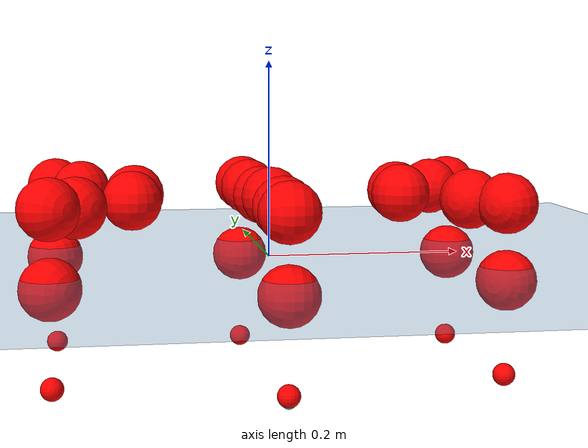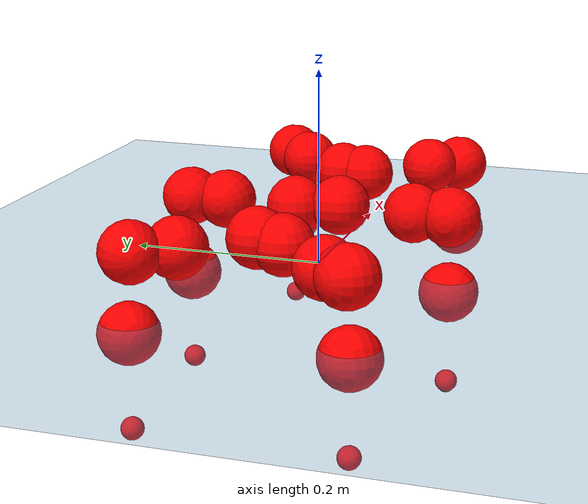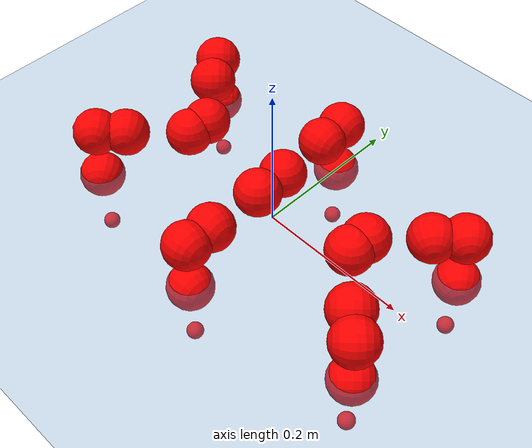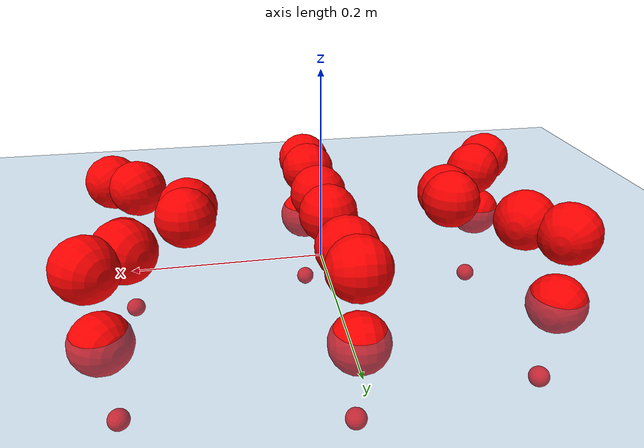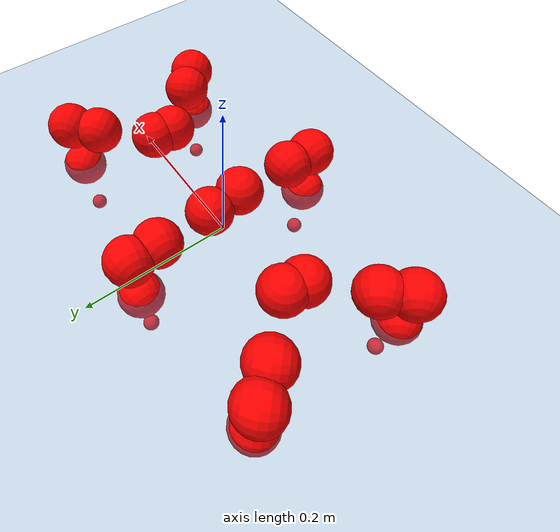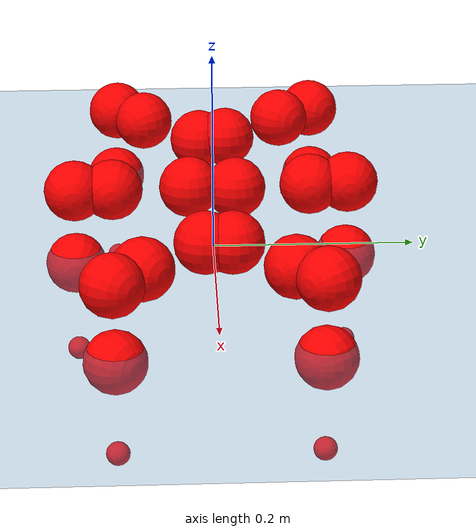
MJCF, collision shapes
<mujoco model="Golem">
  <compiler angle="radian" assetdir="assets" balanceinertia="true" inertiafromgeom="false"/>

  <option timestep="0.005" density="1.2" viscosity="2e-05"/>

  <size nkey="1"/>

  <visual>
    <quality shadowsize="8192"/>
    <map shadowclip="0.5"/>
  </visual>

  <default>
    <default class="/">
      <joint armature="0.01" damping="0.01" frictionloss="0.01"/>
      <geom contype="0" conaffinity="0" group="1" solref="-1000 -80"/>
      <site size="0.01 0.005 0.005" group="5"/>
      <general forcelimited="true" biastype="affine" gainprm="25" biasprm="0 -25 -0.5"/>
      <default class="visual">
        <geom type="mesh" group="2"/>
      </default>
      <default class="collision">
        <geom group="3"/>
      </default>
      <default class="foot">
        <geom size="0.01 0 0" condim="6" group="4" priority="1" solimp="0.015 1 0.01"/>
      </default>
      <default class="reward_collision_sphere">
        <geom group="5" rgba="1 0 0 1"/>
      </default>
    </default>
  </default>

  <asset>
    <texture type="skybox" colorspace="auto" name="//unnamed_texture_0" builtin="gradient" rgb1="0.95 0.95 0.95" rgb2="0.95 0.95 0.95" width="100" height="600"/>
    <texture type="2d" colorspace="auto" name="texplane" builtin="checker" rgb1="0.345 0.575 0.748" rgb2="0.345 0.575 0.748" markrgb="1 1 1" width="512" height="512"/>
    <material name="MatPlane" class="/" texture="texplane" texuniform="true" texrepeat="2 2" specular="0.9"/>
    <mesh name="body" class="/" file="body.stl" scale="0.001 0.001 0.001"/>
    <mesh name="coxa" class="/" file="coxa.stl" scale="0.001 0.001 0.001"/>
    <mesh name="femur" class="/" file="femur.stl" scale="0.001 0.001 0.001"/>
    <mesh name="tibia" class="/" file="tibia.stl" scale="0.001 0.001 0.001"/>
    <mesh name="tarsus" class="/" file="tarsus.stl" scale="0.001 0.001 0.001"/>
  </asset>

  <worldbody>
    <geom name="floor" class="/" size="100 100 0.125" type="plane" group="0" material="MatPlane"/>
    <light name="toplight_shadow" class="/" pos="0 0 5" dir="0.0990148 0.0990148 -0.990148" type="directional" ambient="0.04 0.04 0.04" diffuse="0.55 0.55 0.55" specular="0.12 0.12 0.12"/>
    <light name="toplight_fill" class="/" pos="0 0 5" dir="0.0990148 0.0990148 -0.990148" type="directional" castshadow="false" ambient="0.04 0.04 0.04" diffuse="0.3 0.3 0.3" specular="0.08 0.08 0.08"/>
    <body name="trunk" pos="-0.000257514 0.000296262 -0.00063775" quat="0.999999 -7.23381e-05 -0.000233467 -0.00113304">
      <inertial pos="0.000435953 -0.00112103 -0.00244793" quat="0.999999 0.000480513 0.000148016 0.000987034" mass="1.60872" diaginertia="0.00528866 6.84575e-05 0.00976929"/>
      <joint name="//unnamed_joint_0" type="free"/>
      <geom name="//unnamed_geom_1" class="/" pos="0 0 0.0638505" quat="1 0 0 0" type="mesh" rgba="0.9 0.9 0.9 1" mesh="body"/>
      <site name="imu" class="/" pos="0.127518 -0.0102298 0.101708" size="0.00750853"/>
      <camera name="track" class="/" pos="0 -0.743561 0" quat="0.707107 0.707107 0 0" mode="trackcom"/>
      <camera name="ego_camera" class="/" pos="0.114805 0 0.0997664" quat="-0.5 -0.5 0.5 0.5"/>
      <body name="coxa_RR" pos="-0.15838 -0.0297028 0.0614487" quat="0.383659 0.000351883 -0.000367544 -0.923474">
        <inertial pos="0.000287291 -0.000294837 0.00308249" quat="0.99993 -0.0074315 -0.000574007 -0.0092224" mass="0.0885106" diaginertia="0.00557656 7.39593e-05 0.0101804"/>
        <joint name="coxa_joint_RR" class="/" pos="0 0 0" axis="0.00330029 -0.000524564 -0.999994" range="-3.19328 3.08499" armature="0.00750051" damping="0.0153537" frictionloss="0.00830002"/>
        <geom name="//unnamed_geom_2" class="/" type="mesh" rgba="0.2 0.2 0.2 1" mesh="coxa"/>
        <geom name="//unnamed_geom_3" class="reward_collision_sphere" size="0.0300341" pos="-0.0264934 0 0"/>
        <body name="femur_RR" pos="0.0540457 0.00144585 0.000480229" quat="0.499515 -0.500174 0.500324 0.499987">
          <inertial pos="0.000595092 -0.000593143 0.000927349" quat="0.999997 -0.00173438 0.000933925 -0.00130207" mass="0.0844284" diaginertia="0.00545317 7.24188e-05 0.00986281"/>
          <joint name="femur_joint_RR" class="/" pos="0 0 0" axis="-0.00699942 -0.00434262 -0.999966" range="-3.08572 3.14177" armature="0.00642188" damping="0" frictionloss="0.00752252"/>
          <geom name="//unnamed_geom_4" class="/" type="mesh" rgba="0.9 0.9 0.9 1" mesh="femur"/>
          <geom name="//unnamed_geom_5" class="reward_collision_sphere" size="0.0300341"/>
          <body name="tibia_RR" pos="-0.00250929 -0.037739 0.00196556" quat="-0.00104627 0.999999 -0.000644913 -0.000347916">
            <inertial pos="0.00284654 0.0022382 -0.000983467" quat="0.999996 0.00170226 0.00199752 0.00103763" mass="0.0875602" diaginertia="0.00536222 7.11792e-05 0.00954121"/>
            <joint name="tibia_joint_RR" class="/" pos="0 0 0" axis="0.00731276 0.0108872 0.999914" range="-3.08696 3.13988" armature="0.0065375" damping="0" frictionloss="0.00791153"/>
            <geom name="//unnamed_geom_6" class="/" type="mesh" rgba="0.2 0.2 0.2 1" mesh="tibia"/>
            <geom name="//unnamed_geom_7" class="reward_collision_sphere" size="0.0300341"/>
            <body name="tarsus_RR" pos="0.0748324 0.00169465 -0.0023319" quat="1 0.000120502 0.000263592 0.000189368">
              <inertial pos="0.051029 0.00135484 -0.00133504" quat="0.499913 0.501702 0.499418 0.498963" mass="0.0879121" diaginertia="0.00559596 7.08333e-05 0.0103951"/>
              <joint name="tarsus_joint_RR" class="/" pos="0 0 0" axis="0.00947715 0.00899564 0.999915" stiffness="0.000749619" range="-3.16641 3.15816" armature="0.00776564" damping="0" frictionloss="0.00713017"/>
              <geom name="//unnamed_geom_8" class="/" type="mesh" rgba="0.9 0.9 0.9 1" mesh="tarsus"/>
              <geom name="foot_1" class="foot" size="0.00745547" pos="0.0989087 0 0" quat="0 -0.707107 0 0.707107"/>
              <geom name="//unnamed_geom_10" class="reward_collision_sphere" size="0.0300341"/>
              <geom name="//unnamed_geom_11" class="reward_collision_sphere" size="0.0112628" pos="0.0949347 0 0"/>
              <site name="foot_1" class="foot" pos="0.0989087 0 0" quat="0 -0.707107 0 0.707107" size="0.00750853"/>
            </body>
          </body>
        </body>
      </body>
      <body name="coxa_RM" pos="-0.000915337 -0.0500522 0.0647004" quat="0.706855 -0.000786691 0.00110265 -0.707357">
        <inertial pos="0.00172988 -0.00258876 0.00173538" quat="0.999996 -0.00174876 -0.00219568 -0.000263437" mass="0.0820709" diaginertia="0.00521732 7.12857e-05 0.00986581"/>
        <joint name="coxa_joint_RM" class="/" pos="0 0 0" axis="0.0128868 0.0055685 -0.999901" range="-3.1332 3.1933" armature="0.00839447" damping="0" frictionloss="0.00654509"/>
        <geom name="//unnamed_geom_12" class="/" type="mesh" rgba="0.2 0.2 0.2 1" mesh="coxa"/>
        <geom name="//unnamed_geom_13" class="reward_collision_sphere" size="0.0300341" pos="-0.0264934 0 0"/>
        <body name="femur_RM" pos="0.0497514 0.000302094 -0.00169132" quat="0.499988 -0.499988 0.499973 0.50005">
          <inertial pos="0.00230152 -0.00077571 -0.000413548" quat="0.999995 0.000585344 0.000936735 -0.00309261" mass="0.088731" diaginertia="0.00537229 7.24452e-05 0.0100719"/>
          <joint name="femur_joint_RM" class="/" pos="0 0 0" axis="0.000904874 0.00202157 -0.999998" range="-3.17125 3.13169" armature="0.00759403" damping="0.0157429" frictionloss="0.00842821"/>
          <geom name="//unnamed_geom_14" class="/" type="mesh" rgba="0.9 0.9 0.9 1" mesh="femur"/>
          <geom name="//unnamed_geom_15" class="reward_collision_sphere" size="0.0300341"/>
          <body name="tibia_RM" pos="0.000748437 -0.0375047 -0.000128958" quat="-0.000400352 1 -0.000312154 -0.000219908">
            <inertial pos="0.000813702 -0.00262361 -0.00278762" quat="0.999905 -0.000149068 0.0122328 0.00640565" mass="0.0852955" diaginertia="0.00558237 7.12306e-05 0.0102786"/>
            <joint name="tibia_joint_RM" class="/" pos="0 0 0" axis="-0.00111031 -0.00175858 0.999998" range="-3.1591 3.11837" armature="0.00843762" damping="0.0101655" frictionloss="0.00842385"/>
            <geom name="//unnamed_geom_16" class="/" type="mesh" rgba="0.2 0.2 0.2 1" mesh="tibia"/>
            <geom name="//unnamed_geom_17" class="reward_collision_sphere" size="0.0300341"/>
            <body name="tarsus_RM" pos="0.0781057 0.000283955 0.000110122" quat="1 2.22254e-06 7.39074e-05 0.000198539">
              <inertial pos="0.0556896 -1.20996e-06 0.0007935" quat="0.5098 0.499992 0.496964 0.493091" mass="0.0835634" diaginertia="0.00546319 7.18196e-05 0.00957688"/>
              <joint name="tarsus_joint_RM" class="/" pos="0 0 0" axis="0.00027728 -0.00065872 1" range="-3.0872 3.16956" armature="0.00843944" damping="0.00576912" frictionloss="0.00748483"/>
              <geom name="//unnamed_geom_18" class="/" type="mesh" rgba="0.9 0.9 0.9 1" mesh="tarsus"/>
              <geom name="foot_2" class="foot" size="0.00829675" pos="0.0989087 0 0" quat="0 -0.707107 0 0.707107"/>
              <geom name="//unnamed_geom_20" class="reward_collision_sphere" size="0.0300341"/>
              <geom name="//unnamed_geom_21" class="reward_collision_sphere" size="0.0112628" pos="0.0949347 0 0"/>
              <site name="foot_2" class="foot" pos="0.0989087 0 0" quat="0 -0.707107 0 0.707107" size="0.00750853"/>
            </body>
          </body>
        </body>
      </body>
      <body name="coxa_RF" pos="0.154947 -0.0297984 0.0647375" quat="0.924008 0.000229393 0.000114583 -0.382374">
        <inertial pos="-0.00240551 -0.0022457 0.00273786" quat="0.999917 -0.0118944 0.00345917 -0.00340073" mass="0.0847093" diaginertia="0.00553533 7.01288e-05 0.00986466"/>
        <joint name="coxa_joint_RF" class="/" pos="0 0 0" axis="0.00157021 -0.00208214 -0.999997" range="-3.15998 3.19224" armature="0.00666239" damping="0.00454713" frictionloss="0.0078902"/>
        <geom name="//unnamed_geom_22" class="/" type="mesh" rgba="0.2 0.2 0.2 1" mesh="coxa"/>
        <geom name="//unnamed_geom_23" class="reward_collision_sphere" size="0.0300341" pos="-0.0264934 0 0"/>
        <body name="femur_RF" pos="0.0544003 -0.00199424 -0.000568695" quat="0.499093 -0.500682 0.49967 0.500554">
          <inertial pos="-5.11358e-05 -0.00283078 0.00277092" quat="0.999915 -0.00867393 -0.00304936 -0.00926972" mass="0.0848006" diaginertia="0.00518966 6.83352e-05 0.00993137"/>
          <joint name="femur_joint_RF" class="/" pos="0 0 0" axis="0.000275549 0.00178045 -0.999998" range="-3.08968 3.13849" armature="0.00725825" damping="0" frictionloss="0.00649274"/>
          <geom name="//unnamed_geom_24" class="/" type="mesh" rgba="0.9 0.9 0.9 1" mesh="femur"/>
          <geom name="//unnamed_geom_25" class="reward_collision_sphere" size="0.0300341"/>
          <body name="tibia_RF" pos="0.00190308 -0.0402853 0.00148097" quat="-0.000680818 0.999999 0.000116686 0.00119096">
            <inertial pos="-8.02121e-05 0.00225311 -0.000700434" quat="0.999925 -0.00342615 -0.0117566 -0.000358375" mass="0.0858412" diaginertia="0.00545452 7.12142e-05 0.010022"/>
            <joint name="tibia_joint_RF" class="/" pos="0 0 0" axis="0.010185 -0.00764984 0.999919" stiffness="9.80124e-05" range="-3.12207 3.12577" armature="0.0073804" damping="0.000659271" frictionloss="0.00754299"/>
            <geom name="//unnamed_geom_26" class="/" type="mesh" rgba="0.2 0.2 0.2 1" mesh="tibia"/>
            <geom name="//unnamed_geom_27" class="reward_collision_sphere" size="0.0300341"/>
            <body name="tarsus_RF" pos="0.0764632 -0.000393158 -0.00141394" quat="0.999999 -5.97114e-05 -0.00112057 -0.000830606">
              <inertial pos="0.0503668 0.000702056 0.00238163" quat="0.505992 0.489599 0.505324 0.498911" mass="0.079866" diaginertia="0.0053683 6.9597e-05 0.00952936"/>
              <joint name="tarsus_joint_RF" class="/" pos="0 0 0" axis="-0.0134773 0.00497427 0.999897" range="-3.0878 3.12734" armature="0.00750975" damping="0.00283272" frictionloss="0.00842486"/>
              <geom name="//unnamed_geom_28" class="/" type="mesh" rgba="0.9 0.9 0.9 1" mesh="tarsus"/>
              <geom name="foot_3" class="foot" size="0.00742308" pos="0.0989087 0 0" quat="0 -0.707107 0 0.707107"/>
              <geom name="//unnamed_geom_30" class="reward_collision_sphere" size="0.0300341"/>
              <geom name="//unnamed_geom_31" class="reward_collision_sphere" size="0.0112628" pos="0.0949347 0 0"/>
              <site name="foot_3" class="foot" pos="0.0989087 0 0" quat="0 -0.707107 0 0.707107" size="0.00750853"/>
            </body>
          </body>
        </body>
      </body>
      <body name="coxa_LR" pos="-0.154802 0.0348447 0.0649734" quat="0.382247 -0.00073302 -0.00117517 0.924059">
        <inertial pos="0.00303721 9.41459e-05 -0.00171007" quat="0.999909 -0.00789532 -0.00932015 -0.00566158" mass="0.0848259" diaginertia="0.00528942 7.12986e-05 0.00992084"/>
        <joint name="coxa_joint_LR" class="/" pos="0 0 0" axis="0.0105037 0.00346048 -0.999939" range="-3.12062 3.12428" armature="0.00720539" damping="0.00327336" frictionloss="0.00729887"/>
        <geom name="//unnamed_geom_32" class="/" type="mesh" rgba="0.2 0.2 0.2 1" mesh="coxa"/>
        <geom name="//unnamed_geom_33" class="reward_collision_sphere" size="0.0300341" pos="-0.0264934 0 0"/>
        <body name="femur_LR" pos="0.053049 -0.00382667 0.00015053" quat="0.500176 -0.499766 0.500993 0.499062">
          <inertial pos="0.000239376 0.000484238 -0.000567541" quat="0.999996 -0.00167326 0.00183724 0.00118161" mass="0.0865427" diaginertia="0.00542579 7.192e-05 0.01014"/>
          <joint name="femur_joint_LR" class="/" pos="0 0 0" axis="-0.00176285 -2.80033e-05 0.999998" range="-3.10998 3.18451" armature="0.00781029" damping="0" frictionloss="0.00842217"/>
          <geom name="//unnamed_geom_34" class="/" type="mesh" rgba="0.9 0.9 0.9 1" mesh="femur"/>
          <geom name="//unnamed_geom_35" class="reward_collision_sphere" size="0.0300341"/>
          <body name="tibia_LR" pos="-0.000405099 -0.0434963 -0.00480736" quat="0.000217592 1 0.000260416 0.000351389">
            <inertial pos="0.000411565 -0.00251377 0.00266889" quat="0.999998 -0.0011153 0.00182581 0.000160356" mass="0.0838355" diaginertia="0.00544352 7.42119e-05 0.0100171"/>
            <joint name="tibia_joint_LR" class="/" pos="0 0 0" axis="0.00672831 0.000689637 -0.999977" range="-3.14385 3.08368" armature="0.00656086" damping="0.00661184" frictionloss="0.0068635"/>
            <geom name="//unnamed_geom_36" class="/" type="mesh" rgba="0.2 0.2 0.2 1" mesh="tibia"/>
            <geom name="//unnamed_geom_37" class="reward_collision_sphere" size="0.0300341"/>
            <body name="tarsus_LR" pos="0.0774649 0.00333623 7.37125e-05" quat="1 -7.15377e-05 -0.000271126 0.000139727">
              <inertial pos="0.0529996 -0.000800548 0.000610268" quat="0.499649 0.49952 0.500017 0.500813" mass="0.0837212" diaginertia="0.00529908 6.96554e-05 0.00983442"/>
              <joint name="tarsus_joint_LR" class="/" pos="0 0 0" axis="-0.000418213 -0.00344618 -0.999994" range="-3.08587 3.14333" armature="0.00756595" damping="0" frictionloss="0.00710627"/>
              <geom name="//unnamed_geom_38" class="/" type="mesh" rgba="0.9 0.9 0.9 1" mesh="tarsus"/>
              <geom name="foot_4" class="foot" size="0.00677214" pos="0.0989087 0 0" quat="0.707107 0 -0.707107 0"/>
              <geom name="//unnamed_geom_40" class="reward_collision_sphere" size="0.0300341"/>
              <geom name="//unnamed_geom_41" class="reward_collision_sphere" size="0.0112628" pos="0.0949347 0 0"/>
              <site name="foot_4" class="foot" pos="0.0989087 0 0" quat="0.707107 0 -0.707107 0" size="0.00750853"/>
            </body>
          </body>
        </body>
      </body>
      <body name="coxa_LM" pos="-0.00385905 0.0483866 0.0618131" quat="0.706932 -0.00101187 0.000652734 0.70728">
        <inertial pos="-0.00029613 -2.89589e-05 0.00264142" quat="0.99999 -0.00292787 0.00346611 -0.000173909" mass="0.0867347" diaginertia="0.00569278 7.31394e-05 0.010316"/>
        <joint name="coxa_joint_LM" class="/" pos="0 0 0" axis="5.84986e-05 0.000330716 -1" stiffness="0.00645567" range="-3.19426 3.15663" armature="0.00650884" damping="0.000554335" frictionloss="0.00852694"/>
        <geom name="//unnamed_geom_42" class="/" type="mesh" rgba="0.2 0.2 0.2 1" mesh="coxa"/>
        <geom name="//unnamed_geom_43" class="reward_collision_sphere" size="0.0300341" pos="-0.0264934 0 0"/>
        <body name="femur_LM" pos="0.0476215 0.00376183 0.00136409" quat="0.500001 -0.5 0.499999 0.5">
          <inertial pos="-0.000380635 -0.00270925 0.000208256" quat="0.999945 0.00689494 -0.00097703 0.00781391" mass="0.0793393" diaginertia="0.00521178 6.91037e-05 0.00958972"/>
          <joint name="femur_joint_LM" class="/" pos="0 0 0" axis="0.00969245 0.00322605 0.999948" range="-3.15247 3.15317" armature="0.00687701" damping="0.0057307" frictionloss="0.00836362"/>
          <geom name="//unnamed_geom_44" class="/" type="mesh" rgba="0.9 0.9 0.9 1" mesh="femur"/>
          <geom name="//unnamed_geom_45" class="reward_collision_sphere" size="0.0300341"/>
          <body name="tibia_LM" pos="-0.000705743 -0.0381633 0.00211841" quat="0.000274688 1 0.000180277 0.000220776">
            <inertial pos="-0.00252744 0.000889591 -0.000878653" quat="1 -0.000320247 5.46903e-05 0.000164783" mass="0.0865031" diaginertia="0.00512579 7.05939e-05 0.00967597"/>
            <joint name="tibia_joint_LM" class="/" pos="0 0 0" axis="0.000386462 0.000207988 -1" range="-3.08769 3.13916" armature="0.00733834" damping="0" frictionloss="0.00678657"/>
            <geom name="//unnamed_geom_46" class="/" type="mesh" rgba="0.2 0.2 0.2 1" mesh="tibia"/>
            <geom name="//unnamed_geom_47" class="reward_collision_sphere" size="0.0300341"/>
            <body name="tarsus_LM" pos="0.0805612 -0.000348191 -0.0032276" quat="1 -9.34733e-05 -8.69942e-05 -0.00014082">
              <inertial pos="0.0515129 4.10069e-05 -0.000208385" quat="0.502076 0.496727 0.502201 0.498975" mass="0.0811679" diaginertia="0.00524873 7.01532e-05 0.0100861"/>
              <joint name="tarsus_joint_LM" class="/" pos="0 0 0" axis="-0.000381457 0.011948 -0.999929" range="-3.14407 3.08695" armature="0.00756513" damping="0.0127218" frictionloss="0.00648074"/>
              <geom name="//unnamed_geom_48" class="/" type="mesh" rgba="0.9 0.9 0.9 1" mesh="tarsus"/>
              <geom name="foot_5" class="foot" size="0.00724387" pos="0.0989087 0 0" quat="0.707107 0 -0.707107 0"/>
              <geom name="//unnamed_geom_50" class="reward_collision_sphere" size="0.0300341"/>
              <geom name="//unnamed_geom_51" class="reward_collision_sphere" size="0.0112628" pos="0.0949347 0 0"/>
              <site name="foot_5" class="foot" pos="0.0989087 0 0" quat="0.707107 0 -0.707107 0" size="0.00750853"/>
            </body>
          </body>
        </body>
      </body>
      <body name="coxa_LF" pos="0.156716 0.0335469 0.0651976" quat="0.923833 -0.000538212 0.00062715 0.382794">
        <inertial pos="0.0014213 -0.00241949 0.000758039" quat="0.999995 0.00168589 -0.00251824 0.00063817" mass="0.0823098" diaginertia="0.00519461 6.6279e-05 0.00958678"/>
        <joint name="coxa_joint_LF" class="/" pos="0 0 0" axis="-0.00541027 -0.00744215 -0.999958" range="-3.18866 3.12948" armature="0.00750662" damping="0" frictionloss="0.00813366"/>
        <geom name="//unnamed_geom_52" class="/" type="mesh" rgba="0.2 0.2 0.2 1" mesh="coxa"/>
        <geom name="//unnamed_geom_53" class="reward_collision_sphere" size="0.0300341" pos="-0.0264934 0 0"/>
        <body name="femur_LF" pos="0.0497054 0.00256731 -0.00197946" quat="0.500951 -0.499512 0.499565 0.49997">
          <inertial pos="-0.000539807 -0.000159669 0.00103629" quat="0.999929 0.00872245 2.94879e-05 -0.0081186" mass="0.084244" diaginertia="0.00534878 6.82685e-05 0.00956724"/>
          <joint name="femur_joint_LF" class="/" pos="0 0 0" axis="-0.00833428 0.00991342 0.999916" range="-3.13989 3.11349" armature="0.00775127" damping="0.0105997" frictionloss="0.00665765"/>
          <geom name="//unnamed_geom_54" class="/" type="mesh" rgba="0.9 0.9 0.9 1" mesh="femur"/>
          <geom name="//unnamed_geom_55" class="reward_collision_sphere" size="0.0300341"/>
          <body name="tibia_LF" pos="-0.00051373 -0.0391992 -0.000590941" quat="4.61783e-07 1 4.65216e-07 -6.53618e-07">
            <inertial pos="-0.000711725 0.000559864 0.000256905" quat="0.999969 0.00564259 -0.00242044 0.00488983" mass="0.08703" diaginertia="0.0053716 6.95225e-05 0.00965656"/>
            <joint name="tibia_joint_LF" class="/" pos="0 0 0" axis="-0.00890286 0.00880157 -0.999922" stiffness="0.00496088" range="-3.18916 3.13403" armature="0.00818067" damping="0.0114774" frictionloss="0.00660515"/>
            <geom name="//unnamed_geom_56" class="/" type="mesh" rgba="0.2 0.2 0.2 1" mesh="tibia"/>
            <geom name="//unnamed_geom_57" class="reward_collision_sphere" size="0.0300341"/>
            <body name="tarsus_LF" pos="0.0788323 0.000487147 0.001257" quat="1 -0.00010875 1.19649e-05 8.08078e-07">
              <inertial pos="0.0526308 -0.000308458 0.00255356" quat="0.500663 0.499603 0.499333 0.5004" mass="0.084978" diaginertia="0.00532445 7.05371e-05 0.00969397"/>
              <joint name="tarsus_joint_LF" class="/" pos="0 0 0" axis="0.00897142 -0.0122927 -0.999884" stiffness="0.0309187" range="-3.1349 3.17838" armature="0.00735527" damping="0.0230925" frictionloss="0.00711936"/>
              <geom name="//unnamed_geom_58" class="/" type="mesh" rgba="0.9 0.9 0.9 1" mesh="tarsus"/>
              <geom name="foot_6" class="foot" size="0.007359" pos="0.0989087 0 0" quat="0.707107 0 -0.707107 0"/>
              <geom name="//unnamed_geom_60" class="reward_collision_sphere" size="0.0300341"/>
              <geom name="//unnamed_geom_61" class="reward_collision_sphere" size="0.0112628" pos="0.0949347 0 0"/>
              <site name="foot_6" class="foot" pos="0.0989087 0 0" quat="0.707107 0 -0.707107 0" size="0.00750853"/>
            </body>
          </body>
        </body>
      </body>
    </body>
  </worldbody>

  <contact>
    <pair class="/" geom1="floor" geom2="foot_1" name="//unnamed_contact_0"/>
    <pair class="/" geom1="floor" geom2="foot_2" name="//unnamed_contact_1"/>
    <pair class="/" geom1="floor" geom2="foot_3" name="//unnamed_contact_2"/>
    <pair class="/" geom1="floor" geom2="foot_4" name="//unnamed_contact_3"/>
    <pair class="/" geom1="floor" geom2="foot_5" name="//unnamed_contact_4"/>
    <pair class="/" geom1="floor" geom2="foot_6" name="//unnamed_contact_5"/>
  </contact>

  <actuator>
    <general name="coxa_joint_RR" class="/" joint="coxa_joint_RR" forcerange="-6.01163 6.01163" gainprm="17.3249" biasprm="0 -17.3249 -0.363882"/>
    <general name="femur_joint_RR" class="/" joint="femur_joint_RR" forcerange="-5.69252 5.69252" gainprm="17.3249" biasprm="0 -17.3249 -0.363882"/>
    <general name="tibia_joint_RR" class="/" joint="tibia_joint_RR" forcerange="-5.61261 5.61261" gainprm="17.3249" biasprm="0 -17.3249 -0.363882"/>
    <general name="tarsus_joint_RR" class="/" joint="tarsus_joint_RR" forcerange="-5.28146 5.28146" gainprm="17.3249" biasprm="0 -17.3249 -0.363882"/>
    <general name="coxa_joint_RM" class="/" joint="coxa_joint_RM" forcerange="-6.01822 6.01822" gainprm="17.3249" biasprm="0 -17.3249 -0.363882"/>
    <general name="femur_joint_RM" class="/" joint="femur_joint_RM" forcerange="-6.04859 6.04859" gainprm="17.3249" biasprm="0 -17.3249 -0.363882"/>
    <general name="tibia_joint_RM" class="/" joint="tibia_joint_RM" forcerange="-5.24194 5.24194" gainprm="17.3249" biasprm="0 -17.3249 -0.363882"/>
    <general name="tarsus_joint_RM" class="/" joint="tarsus_joint_RM" forcerange="-5.98758 5.98758" gainprm="17.3249" biasprm="0 -17.3249 -0.363882"/>
    <general name="coxa_joint_RF" class="/" joint="coxa_joint_RF" forcerange="-6.03956 6.03956" gainprm="17.3249" biasprm="0 -17.3249 -0.363882"/>
    <general name="femur_joint_RF" class="/" joint="femur_joint_RF" forcerange="-4.92523 4.92523" gainprm="17.3249" biasprm="0 -17.3249 -0.363882"/>
    <general name="tibia_joint_RF" class="/" joint="tibia_joint_RF" forcerange="-5.29818 5.29818" gainprm="17.3249" biasprm="0 -17.3249 -0.363882"/>
    <general name="tarsus_joint_RF" class="/" joint="tarsus_joint_RF" forcerange="-5.44866 5.44866" gainprm="17.3249" biasprm="0 -17.3249 -0.363882"/>
    <general name="coxa_joint_LR" class="/" joint="coxa_joint_LR" forcerange="-5.79152 5.79152" gainprm="17.3249" biasprm="0 -17.3249 -0.363882"/>
    <general name="femur_joint_LR" class="/" joint="femur_joint_LR" forcerange="-4.97247 4.97247" gainprm="17.3249" biasprm="0 -17.3249 -0.363882"/>
    <general name="tibia_joint_LR" class="/" joint="tibia_joint_LR" forcerange="-5.27056 5.27056" gainprm="17.3249" biasprm="0 -17.3249 -0.363882"/>
    <general name="tarsus_joint_LR" class="/" joint="tarsus_joint_LR" forcerange="-5.69273 5.69273" gainprm="17.3249" biasprm="0 -17.3249 -0.363882"/>
    <general name="coxa_joint_LM" class="/" joint="coxa_joint_LM" forcerange="-5.47953 5.47953" gainprm="17.3249" biasprm="0 -17.3249 -0.363882"/>
    <general name="femur_joint_LM" class="/" joint="femur_joint_LM" forcerange="-5.51551 5.51551" gainprm="17.3249" biasprm="0 -17.3249 -0.363882"/>
    <general name="tibia_joint_LM" class="/" joint="tibia_joint_LM" forcerange="-4.97146 4.97146" gainprm="17.3249" biasprm="0 -17.3249 -0.363882"/>
    <general name="tarsus_joint_LM" class="/" joint="tarsus_joint_LM" forcerange="-5.5016 5.5016" gainprm="17.3249" biasprm="0 -17.3249 -0.363882"/>
    <general name="coxa_joint_LF" class="/" joint="coxa_joint_LF" forcerange="-6.04864 6.04864" gainprm="17.3249" biasprm="0 -17.3249 -0.363882"/>
    <general name="femur_joint_LF" class="/" joint="femur_joint_LF" forcerange="-6.0489 6.0489" gainprm="17.3249" biasprm="0 -17.3249 -0.363882"/>
    <general name="tibia_joint_LF" class="/" joint="tibia_joint_LF" forcerange="-5.36758 5.36758" gainprm="17.3249" biasprm="0 -17.3249 -0.363882"/>
    <general name="tarsus_joint_LF" class="/" joint="tarsus_joint_LF" forcerange="-5.55437 5.55437" gainprm="17.3249" biasprm="0 -17.3249 -0.363882"/>
  </actuator>

  <sensor>
    <gyro site="imu" name="imu_angular_velocity"/>
    <velocimeter site="imu" name="imu_linear_velocity"/>
    <framelinvel objtype="site" objname="foot_1" name="foot_1_global_linear_velocity"/>
    <framelinvel objtype="site" objname="foot_2" name="foot_2_global_linear_velocity"/>
    <framelinvel objtype="site" objname="foot_3" name="foot_3_global_linear_velocity"/>
    <framelinvel objtype="site" objname="foot_4" name="foot_4_global_linear_velocity"/>
    <framelinvel objtype="site" objname="foot_5" name="foot_5_global_linear_velocity"/>
    <framelinvel objtype="site" objname="foot_6" name="foot_6_global_linear_velocity"/>
  </sensor>

  <keyframe>
    <key name="home" qpos="0 0 0.1457 1 0 0 0 0 0 0 0 0 0 0 0 0 0 0 0 0 0 0 0 0 0 0 0 0 0 0 0"/>
  </keyframe>
</mujoco>
